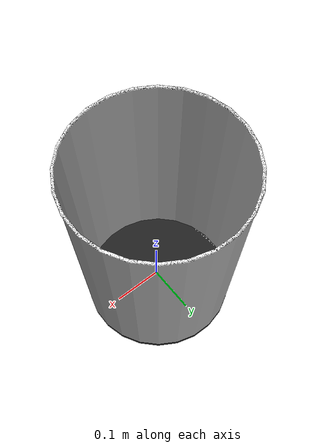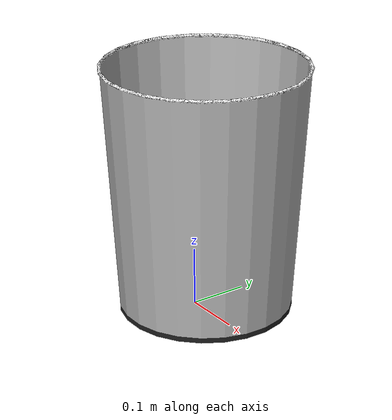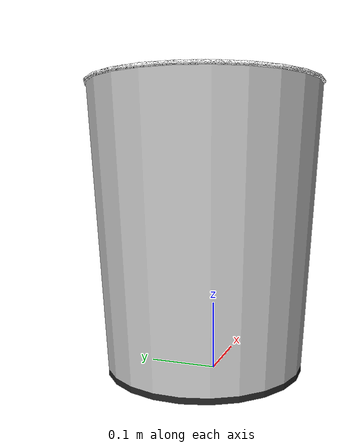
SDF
<?xml version="1.0" ?>
<sdf version="1.5">
  <model name="trash">
    <link name="link">
      <pose>0 0 0 0 0 0</pose>
      <gravity>false</gravity>
      <inertial>
	<mass>1</mass>
      </inertial>
      <visual name="visual">
	<geometry>
	  <mesh>
	    <uri>model://trash/meshes/trash.dae</uri>
	  </mesh>
	</geometry>
      </visual>
      <collision name="trash">
	<geometry>
	  <mesh>
	    <uri>model://trash/meshes/trash.dae</uri>
	  </mesh>
	</geometry>
      </collision>
    </link>
    <static>0</static>
  </model>
</sdf>
